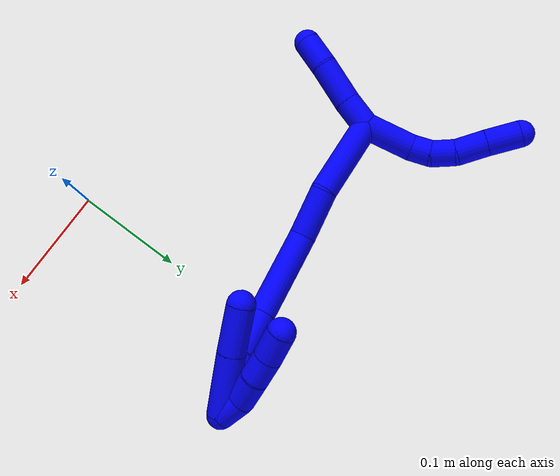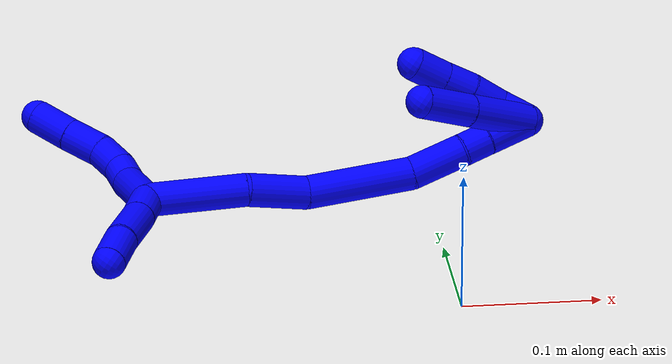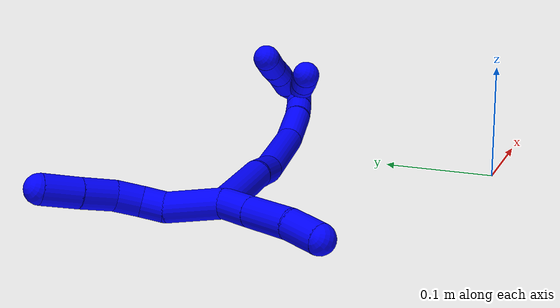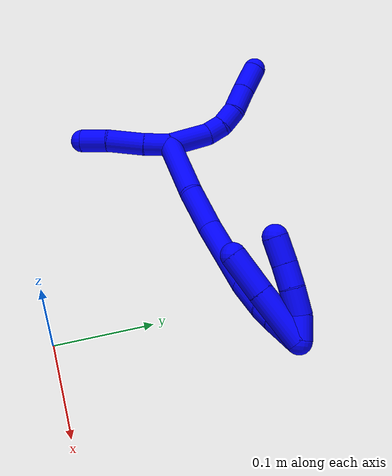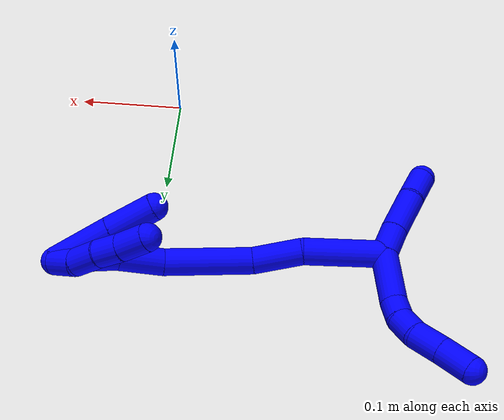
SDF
<sdf version="1.7">
 <world name="default">
  <model name="1">
   <static>0</static>
   <link name="1">
    <collision name="collision-cylinder-e_1_2_8">
     <pose>0.011489 0.018493 0.009743 -1.08589 0.502562 -0.307371</pose>
     <geometry><cylinder><radius>0.0125</radius><length>0.047705</length></cylinder></geometry>
     <surface>
      <friction><ode><mu>1.16</mu><mu2>1.16</mu2><slip1>0</slip1><slip2>0</slip2></ode></friction>
      <contact><ode><kp>1e+06</kp><kd>1</kd><max_vel>0</max_vel><min_depth>0.001</min_depth></ode></contact>
     </surface>
    </collision>
    <visual name="visual-cylinder-e_1_2_8">
     <pose>0.011489 0.018493 0.009743 -1.08589 0.502562 -0.307371</pose>
     <geometry><cylinder><radius>0.0125</radius><length>0.047705</length></cylinder></geometry>
     <material><ambient>0 0 1 1</ambient></material>
    </visual>
    <collision name="collision-cylinder-e_2_8_9">
     <pose>0.028894 0.042202 0.025669 -0.700778 0.631579 -0.237689</pose>
     <geometry><cylinder><radius>0.0125</radius><length>0.020041</length></cylinder></geometry>
     <surface>
      <friction><ode><mu>1.16</mu><mu2>1.16</mu2><slip1>0</slip1><slip2>0</slip2></ode></friction>
      <contact><ode><kp>1e+06</kp><kd>1</kd><max_vel>0</max_vel><min_depth>0.001</min_depth></ode></contact>
     </surface>
    </collision>
    <visual name="visual-cylinder-e_2_8_9">
     <pose>0.028894 0.042202 0.025669 -0.700778 0.631579 -0.237689</pose>
     <geometry><cylinder><radius>0.0125</radius><length>0.020041</length></cylinder></geometry>
     <material><ambient>0 0 1 1</ambient></material>
    </visual>
    <collision name="collision-cylinder-e_3_9_10">
     <pose>0.038753 0.05204 0.041283 -0.455741 0.359004 -0.084108</pose>
     <geometry><cylinder><radius>0.0125</radius><length>0.022442</length></cylinder></geometry>
     <surface>
      <friction><ode><mu>1.16</mu><mu2>1.16</mu2><slip1>0</slip1><slip2>0</slip2></ode></friction>
      <contact><ode><kp>1e+06</kp><kd>1</kd><max_vel>0</max_vel><min_depth>0.001</min_depth></ode></contact>
     </surface>
    </collision>
    <visual name="visual-cylinder-e_3_9_10">
     <pose>0.038753 0.05204 0.041283 -0.455741 0.359004 -0.084108</pose>
     <geometry><cylinder><radius>0.0125</radius><length>0.022442</length></cylinder></geometry>
     <material><ambient>0 0 1 1</ambient></material>
    </visual>
    <collision name="collision-cylinder-e_4_10_11">
     <pose>0.043777 0.062206 0.063885 -0.39836 0.075541 -0.015255</pose>
     <geometry><cylinder><radius>0.0125</radius><length>0.028656</length></cylinder></geometry>
     <surface>
      <friction><ode><mu>1.16</mu><mu2>1.16</mu2><slip1>0</slip1><slip2>0</slip2></ode></friction>
      <contact><ode><kp>1e+06</kp><kd>1</kd><max_vel>0</max_vel><min_depth>0.001</min_depth></ode></contact>
     </surface>
    </collision>
    <visual name="visual-cylinder-e_4_10_11">
     <pose>0.043777 0.062206 0.063885 -0.39836 0.075541 -0.015255</pose>
     <geometry><cylinder><radius>0.0125</radius><length>0.028656</length></cylinder></geometry>
     <material><ambient>0 0 1 1</ambient></material>
    </visual>
    <collision name="collision-cylinder-e_5_11_6">
     <pose>0.046782 0.073852 0.091256 -0.405917 0.123851 -0.025519</pose>
     <geometry><cylinder><radius>0.0125</radius><length>0.031157</length></cylinder></geometry>
     <surface>
      <friction><ode><mu>1.16</mu><mu2>1.16</mu2><slip1>0</slip1><slip2>0</slip2></ode></friction>
      <contact><ode><kp>1e+06</kp><kd>1</kd><max_vel>0</max_vel><min_depth>0.001</min_depth></ode></contact>
     </surface>
    </collision>
    <visual name="visual-cylinder-e_5_11_6">
     <pose>0.046782 0.073852 0.091256 -0.405917 0.123851 -0.025519</pose>
     <geometry><cylinder><radius>0.0125</radius><length>0.031157</length></cylinder></geometry>
     <material><ambient>0 0 1 1</ambient></material>
    </visual>
    <collision name="collision-cylinder-e_1_2_12">
     <pose>-0.012082 -0.00769 -0.001104 1.71337 -0.99935 -1.12414</pose>
     <geometry><cylinder><radius>0.0125</radius><length>0.028729</length></cylinder></geometry>
     <surface>
      <friction><ode><mu>1.16</mu><mu2>1.16</mu2><slip1>0</slip1><slip2>0</slip2></ode></friction>
      <contact><ode><kp>1e+06</kp><kd>1</kd><max_vel>0</max_vel><min_depth>0.001</min_depth></ode></contact>
     </surface>
    </collision>
    <visual name="visual-cylinder-e_1_2_12">
     <pose>-0.012082 -0.00769 -0.001104 1.71337 -0.99935 -1.12414</pose>
     <geometry><cylinder><radius>0.0125</radius><length>0.028729</length></cylinder></geometry>
     <material><ambient>0 0 1 1</ambient></material>
    </visual>
    <collision name="collision-cylinder-e_2_12_13">
     <pose>-0.041639 -0.026576 -0.002082 1.55955 -1.00097 -0.991533</pose>
     <geometry><cylinder><radius>0.0125</radius><length>0.041508</length></cylinder></geometry>
     <surface>
      <friction><ode><mu>1.16</mu><mu2>1.16</mu2><slip1>0</slip1><slip2>0</slip2></ode></friction>
      <contact><ode><kp>1e+06</kp><kd>1</kd><max_vel>0</max_vel><min_depth>0.001</min_depth></ode></contact>
     </surface>
    </collision>
    <visual name="visual-cylinder-e_2_12_13">
     <pose>-0.041639 -0.026576 -0.002082 1.55955 -1.00097 -0.991533</pose>
     <geometry><cylinder><radius>0.0125</radius><length>0.041508</length></cylinder></geometry>
     <material><ambient>0 0 1 1</ambient></material>
    </visual>
    <collision name="collision-cylinder-e_3_13_5">
     <pose>-0.072499 -0.044168 -0.003131 1.75241 -1.11854 -1.28872</pose>
     <geometry><cylinder><radius>0.0125</radius><length>0.029763</length></cylinder></geometry>
     <surface>
      <friction><ode><mu>1.16</mu><mu2>1.16</mu2><slip1>0</slip1><slip2>0</slip2></ode></friction>
      <contact><ode><kp>1e+06</kp><kd>1</kd><max_vel>0</max_vel><min_depth>0.001</min_depth></ode></contact>
     </surface>
    </collision>
    <visual name="visual-cylinder-e_3_13_5">
     <pose>-0.072499 -0.044168 -0.003131 1.75241 -1.11854 -1.28872</pose>
     <geometry><cylinder><radius>0.0125</radius><length>0.029763</length></cylinder></geometry>
     <material><ambient>0 0 1 1</ambient></material>
    </visual>
    <collision name="collision-cylinder-e_1_2_14">
     <pose>0.023293 -0.006802 -0.028027 2.90351 0.679373 2.48888</pose>
     <geometry><cylinder><radius>0.0125</radius><length>0.074144</length></cylinder></geometry>
     <surface>
      <friction><ode><mu>1.16</mu><mu2>1.16</mu2><slip1>0</slip1><slip2>0</slip2></ode></friction>
      <contact><ode><kp>1e+06</kp><kd>1</kd><max_vel>0</max_vel><min_depth>0.001</min_depth></ode></contact>
     </surface>
    </collision>
    <visual name="visual-cylinder-e_1_2_14">
     <pose>0.023293 -0.006802 -0.028027 2.90351 0.679373 2.48888</pose>
     <geometry><cylinder><radius>0.0125</radius><length>0.074144</length></cylinder></geometry>
     <material><ambient>0 0 1 1</ambient></material>
    </visual>
    <collision name="collision-cylinder-e_2_14_15">
     <pose>0.060418 -0.012271 -0.074772 -3.07054 0.63523 -2.92621</pose>
     <geometry><cylinder><radius>0.0125</radius><length>0.046624</length></cylinder></geometry>
     <surface>
      <friction><ode><mu>1.16</mu><mu2>1.16</mu2><slip1>0</slip1><slip2>0</slip2></ode></friction>
      <contact><ode><kp>1e+06</kp><kd>1</kd><max_vel>0</max_vel><min_depth>0.001</min_depth></ode></contact>
     </surface>
    </collision>
    <visual name="visual-cylinder-e_2_14_15">
     <pose>0.060418 -0.012271 -0.074772 -3.07054 0.63523 -2.92621</pose>
     <geometry><cylinder><radius>0.0125</radius><length>0.046624</length></cylinder></geometry>
     <material><ambient>0 0 1 1</ambient></material>
    </visual>
    <collision name="collision-cylinder-e_3_15_16">
     <pose>0.102815 -0.017243 -0.121868 2.92301 0.776624 2.61747</pose>
     <geometry><cylinder><radius>0.0125</radius><length>0.081511</length></cylinder></geometry>
     <surface>
      <friction><ode><mu>1.16</mu><mu2>1.16</mu2><slip1>0</slip1><slip2>0</slip2></ode></friction>
      <contact><ode><kp>1e+06</kp><kd>1</kd><max_vel>0</max_vel><min_depth>0.001</min_depth></ode></contact>
     </surface>
    </collision>
    <visual name="visual-cylinder-e_3_15_16">
     <pose>0.102815 -0.017243 -0.121868 2.92301 0.776624 2.61747</pose>
     <geometry><cylinder><radius>0.0125</radius><length>0.081511</length></cylinder></geometry>
     <material><ambient>0 0 1 1</ambient></material>
    </visual>
    <collision name="collision-cylinder-e_4_16_17">
     <pose>0.147984 -0.03052 -0.161184 2.57401 0.907647 2.06379</pose>
     <geometry><cylinder><radius>0.0125</radius><length>0.042141</length></cylinder></geometry>
     <surface>
      <friction><ode><mu>1.16</mu><mu2>1.16</mu2><slip1>0</slip1><slip2>0</slip2></ode></friction>
      <contact><ode><kp>1e+06</kp><kd>1</kd><max_vel>0</max_vel><min_depth>0.001</min_depth></ode></contact>
     </surface>
    </collision>
    <visual name="visual-cylinder-e_4_16_17">
     <pose>0.147984 -0.03052 -0.161184 2.57401 0.907647 2.06379</pose>
     <geometry><cylinder><radius>0.0125</radius><length>0.042141</length></cylinder></geometry>
     <material><ambient>0 0 1 1</ambient></material>
    </visual>
    <collision name="collision-cylinder-e_5_17_18">
     <pose>0.173132 -0.039573 -0.177175 2.75115 1.00165 2.44827</pose>
     <geometry><cylinder><radius>0.0125</radius><length>0.020285</length></cylinder></geometry>
     <surface>
      <friction><ode><mu>1.16</mu><mu2>1.16</mu2><slip1>0</slip1><slip2>0</slip2></ode></friction>
      <contact><ode><kp>1e+06</kp><kd>1</kd><max_vel>0</max_vel><min_depth>0.001</min_depth></ode></contact>
     </surface>
    </collision>
    <visual name="visual-cylinder-e_5_17_18">
     <pose>0.173132 -0.039573 -0.177175 2.75115 1.00165 2.44827</pose>
     <geometry><cylinder><radius>0.0125</radius><length>0.020285</length></cylinder></geometry>
     <material><ambient>0 0 1 1</ambient></material>
    </visual>
    <collision name="collision-cylinder-e_6_18_1">
     <pose>0.196867 -0.043983 -0.190904 2.8792 1.03686 2.68697</pose>
     <geometry><cylinder><radius>0.0125</radius><length>0.035295</length></cylinder></geometry>
     <surface>
      <friction><ode><mu>1.16</mu><mu2>1.16</mu2><slip1>0</slip1><slip2>0</slip2></ode></friction>
      <contact><ode><kp>1e+06</kp><kd>1</kd><max_vel>0</max_vel><min_depth>0.001</min_depth></ode></contact>
     </surface>
    </collision>
    <visual name="visual-cylinder-e_6_18_1">
     <pose>0.196867 -0.043983 -0.190904 2.8792 1.03686 2.68697</pose>
     <geometry><cylinder><radius>0.0125</radius><length>0.035295</length></cylinder></geometry>
     <material><ambient>0 0 1 1</ambient></material>
    </visual>
    <collision name="collision-cylinder-e_1_1_19">
     <pose>0.195289 -0.056532 -0.179126 0.46338 -0.632842 -0.154189</pose>
     <geometry><cylinder><radius>0.0125</radius><length>0.056706</length></cylinder></geometry>
     <surface>
      <friction><ode><mu>1.16</mu><mu2>1.16</mu2><slip1>0</slip1><slip2>0</slip2></ode></friction>
      <contact><ode><kp>1e+06</kp><kd>1</kd><max_vel>0</max_vel><min_depth>0.001</min_depth></ode></contact>
     </surface>
    </collision>
    <visual name="visual-cylinder-e_1_1_19">
     <pose>0.195289 -0.056532 -0.179126 0.46338 -0.632842 -0.154189</pose>
     <geometry><cylinder><radius>0.0125</radius><length>0.056706</length></cylinder></geometry>
     <material><ambient>0 0 1 1</ambient></material>
    </visual>
    <collision name="collision-cylinder-e_2_19_4">
     <pose>0.165985 -0.074137 -0.142646 0.431806 -0.617599 -0.139702</pose>
     <geometry><cylinder><radius>0.0125</radius><length>0.043294</length></cylinder></geometry>
     <surface>
      <friction><ode><mu>1.16</mu><mu2>1.16</mu2><slip1>0</slip1><slip2>0</slip2></ode></friction>
      <contact><ode><kp>1e+06</kp><kd>1</kd><max_vel>0</max_vel><min_depth>0.001</min_depth></ode></contact>
     </surface>
    </collision>
    <visual name="visual-cylinder-e_2_19_4">
     <pose>0.165985 -0.074137 -0.142646 0.431806 -0.617599 -0.139702</pose>
     <geometry><cylinder><radius>0.0125</radius><length>0.043294</length></cylinder></geometry>
     <material><ambient>0 0 1 1</ambient></material>
    </visual>
    <collision name="collision-cylinder-e_1_1_20">
     <pose>0.210608 -0.0459 -0.18768 -0.034686 -0.12123 0.002105</pose>
     <geometry><cylinder><radius>0.0125</radius><length>0.023985</length></cylinder></geometry>
     <surface>
      <friction><ode><mu>1.16</mu><mu2>1.16</mu2><slip1>0</slip1><slip2>0</slip2></ode></friction>
      <contact><ode><kp>1e+06</kp><kd>1</kd><max_vel>0</max_vel><min_depth>0.001</min_depth></ode></contact>
     </surface>
    </collision>
    <visual name="visual-cylinder-e_1_1_20">
     <pose>0.210608 -0.0459 -0.18768 -0.034686 -0.12123 0.002105</pose>
     <geometry><cylinder><radius>0.0125</radius><length>0.023985</length></cylinder></geometry>
     <material><ambient>0 0 1 1</ambient></material>
    </visual>
    <collision name="collision-cylinder-e_2_20_21">
     <pose>0.205982 -0.049098 -0.163543 0.286898 -0.243869 -0.035397</pose>
     <geometry><cylinder><radius>0.0125</radius><length>0.026301</length></cylinder></geometry>
     <surface>
      <friction><ode><mu>1.16</mu><mu2>1.16</mu2><slip1>0</slip1><slip2>0</slip2></ode></friction>
      <contact><ode><kp>1e+06</kp><kd>1</kd><max_vel>0</max_vel><min_depth>0.001</min_depth></ode></contact>
     </surface>
    </collision>
    <visual name="visual-cylinder-e_2_20_21">
     <pose>0.205982 -0.049098 -0.163543 0.286898 -0.243869 -0.035397</pose>
     <geometry><cylinder><radius>0.0125</radius><length>0.026301</length></cylinder></geometry>
     <material><ambient>0 0 1 1</ambient></material>
    </visual>
    <collision name="collision-cylinder-e_3_21_22">
     <pose>0.198945 -0.055 -0.14056 0.210056 -0.338104 -0.035981</pose>
     <geometry><cylinder><radius>0.0125</radius><length>0.023288</length></cylinder></geometry>
     <surface>
      <friction><ode><mu>1.16</mu><mu2>1.16</mu2><slip1>0</slip1><slip2>0</slip2></ode></friction>
      <contact><ode><kp>1e+06</kp><kd>1</kd><max_vel>0</max_vel><min_depth>0.001</min_depth></ode></contact>
     </surface>
    </collision>
    <visual name="visual-cylinder-e_3_21_22">
     <pose>0.198945 -0.055 -0.14056 0.210056 -0.338104 -0.035981</pose>
     <geometry><cylinder><radius>0.0125</radius><length>0.023288</length></cylinder></geometry>
     <material><ambient>0 0 1 1</ambient></material>
    </visual>
    <collision name="collision-cylinder-e_4_22_3">
     <pose>0.190751 -0.060871 -0.117858 0.290886 -0.33399 -0.049372</pose>
     <geometry><cylinder><radius>0.0125</radius><length>0.026426</length></cylinder></geometry>
     <surface>
      <friction><ode><mu>1.16</mu><mu2>1.16</mu2><slip1>0</slip1><slip2>0</slip2></ode></friction>
      <contact><ode><kp>1e+06</kp><kd>1</kd><max_vel>0</max_vel><min_depth>0.001</min_depth></ode></contact>
     </surface>
    </collision>
    <visual name="visual-cylinder-e_4_22_3">
     <pose>0.190751 -0.060871 -0.117858 0.290886 -0.33399 -0.049372</pose>
     <geometry><cylinder><radius>0.0125</radius><length>0.026426</length></cylinder></geometry>
     <material><ambient>0 0 1 1</ambient></material>
    </visual>
    <collision name="collision-sphere-3">
     <pose>0.186419 -0.064451 -0.1059 0 -0 0</pose>
     <geometry><sphere><radius>0.0125</radius></sphere></geometry>
     <surface>
      <friction><ode><mu>1.16</mu><mu2>1.16</mu2><slip1>0</slip1><slip2>0</slip2></ode></friction>
      <contact><ode><kp>1e+06</kp><kd>1</kd><max_vel>0</max_vel><min_depth>0.001</min_depth></ode></contact>
     </surface>
    </collision>
    <visual name="visual-sphere-3">
     <pose>0.186419 -0.064451 -0.1059 0 -0 0</pose>
     <geometry><sphere><radius>0.0125</radius></sphere></geometry>
     <material><ambient>0 0 1 1</ambient></material>
    </visual>
    <collision name="collision-sphere-22">
     <pose>0.195082 -0.057291 -0.129817 0 -0 0</pose>
     <geometry><sphere><radius>0.0125</radius></sphere></geometry>
     <surface>
      <friction><ode><mu>1.16</mu><mu2>1.16</mu2><slip1>0</slip1><slip2>0</slip2></ode></friction>
      <contact><ode><kp>1e+06</kp><kd>1</kd><max_vel>0</max_vel><min_depth>0.001</min_depth></ode></contact>
     </surface>
    </collision>
    <visual name="visual-sphere-22">
     <pose>0.195082 -0.057291 -0.129817 0 -0 0</pose>
     <geometry><sphere><radius>0.0125</radius></sphere></geometry>
     <material><ambient>0 0 1 1</ambient></material>
    </visual>
    <collision name="collision-sphere-21">
     <pose>0.202807 -0.05271 -0.151304 0 -0 0</pose>
     <geometry><sphere><radius>0.0125</radius></sphere></geometry>
     <surface>
      <friction><ode><mu>1.16</mu><mu2>1.16</mu2><slip1>0</slip1><slip2>0</slip2></ode></friction>
      <contact><ode><kp>1e+06</kp><kd>1</kd><max_vel>0</max_vel><min_depth>0.001</min_depth></ode></contact>
     </surface>
    </collision>
    <visual name="visual-sphere-21">
     <pose>0.202807 -0.05271 -0.151304 0 -0 0</pose>
     <geometry><sphere><radius>0.0125</radius></sphere></geometry>
     <material><ambient>0 0 1 1</ambient></material>
    </visual>
    <collision name="collision-sphere-20">
     <pose>0.209158 -0.045487 -0.175783 0 -0 0</pose>
     <geometry><sphere><radius>0.0125</radius></sphere></geometry>
     <surface>
      <friction><ode><mu>1.16</mu><mu2>1.16</mu2><slip1>0</slip1><slip2>0</slip2></ode></friction>
      <contact><ode><kp>1e+06</kp><kd>1</kd><max_vel>0</max_vel><min_depth>0.001</min_depth></ode></contact>
     </surface>
    </collision>
    <visual name="visual-sphere-20">
     <pose>0.209158 -0.045487 -0.175783 0 -0 0</pose>
     <geometry><sphere><radius>0.0125</radius></sphere></geometry>
     <material><ambient>0 0 1 1</ambient></material>
    </visual>
    <collision name="collision-sphere-4">
     <pose>0.153449 -0.081523 -0.126618 0 -0 0</pose>
     <geometry><sphere><radius>0.0125</radius></sphere></geometry>
     <surface>
      <friction><ode><mu>1.16</mu><mu2>1.16</mu2><slip1>0</slip1><slip2>0</slip2></ode></friction>
      <contact><ode><kp>1e+06</kp><kd>1</kd><max_vel>0</max_vel><min_depth>0.001</min_depth></ode></contact>
     </surface>
    </collision>
    <visual name="visual-sphere-4">
     <pose>0.153449 -0.081523 -0.126618 0 -0 0</pose>
     <geometry><sphere><radius>0.0125</radius></sphere></geometry>
     <material><ambient>0 0 1 1</ambient></material>
    </visual>
    <collision name="collision-sphere-6">
     <pose>0.048707 0.079956 0.105459 0 -0 0</pose>
     <geometry><sphere><radius>0.0125</radius></sphere></geometry>
     <surface>
      <friction><ode><mu>1.16</mu><mu2>1.16</mu2><slip1>0</slip1><slip2>0</slip2></ode></friction>
      <contact><ode><kp>1e+06</kp><kd>1</kd><max_vel>0</max_vel><min_depth>0.001</min_depth></ode></contact>
     </surface>
    </collision>
    <visual name="visual-sphere-6">
     <pose>0.048707 0.079956 0.105459 0 -0 0</pose>
     <geometry><sphere><radius>0.0125</radius></sphere></geometry>
     <material><ambient>0 0 1 1</ambient></material>
    </visual>
    <collision name="collision-sphere-11">
     <pose>0.044858 0.067748 0.077054 0 -0 0</pose>
     <geometry><sphere><radius>0.0125</radius></sphere></geometry>
     <surface>
      <friction><ode><mu>1.16</mu><mu2>1.16</mu2><slip1>0</slip1><slip2>0</slip2></ode></friction>
      <contact><ode><kp>1e+06</kp><kd>1</kd><max_vel>0</max_vel><min_depth>0.001</min_depth></ode></contact>
     </surface>
    </collision>
    <visual name="visual-sphere-11">
     <pose>0.044858 0.067748 0.077054 0 -0 0</pose>
     <geometry><sphere><radius>0.0125</radius></sphere></geometry>
     <material><ambient>0 0 1 1</ambient></material>
    </visual>
    <collision name="collision-sphere-10">
     <pose>0.042695 0.056664 0.050717 0 -0 0</pose>
     <geometry><sphere><radius>0.0125</radius></sphere></geometry>
     <surface>
      <friction><ode><mu>1.16</mu><mu2>1.16</mu2><slip1>0</slip1><slip2>0</slip2></ode></friction>
      <contact><ode><kp>1e+06</kp><kd>1</kd><max_vel>0</max_vel><min_depth>0.001</min_depth></ode></contact>
     </surface>
    </collision>
    <visual name="visual-sphere-10">
     <pose>0.042695 0.056664 0.050717 0 -0 0</pose>
     <geometry><sphere><radius>0.0125</radius></sphere></geometry>
     <material><ambient>0 0 1 1</ambient></material>
    </visual>
    <collision name="collision-sphere-9">
     <pose>0.034811 0.047416 0.03185 0 -0 0</pose>
     <geometry><sphere><radius>0.0125</radius></sphere></geometry>
     <surface>
      <friction><ode><mu>1.16</mu><mu2>1.16</mu2><slip1>0</slip1><slip2>0</slip2></ode></friction>
      <contact><ode><kp>1e+06</kp><kd>1</kd><max_vel>0</max_vel><min_depth>0.001</min_depth></ode></contact>
     </surface>
    </collision>
    <visual name="visual-sphere-9">
     <pose>0.034811 0.047416 0.03185 0 -0 0</pose>
     <geometry><sphere><radius>0.0125</radius></sphere></geometry>
     <material><ambient>0 0 1 1</ambient></material>
    </visual>
    <collision name="collision-sphere-2">
     <geometry><sphere><radius>0.0125</radius></sphere></geometry>
     <surface>
      <friction><ode><mu>1.16</mu><mu2>1.16</mu2><slip1>0</slip1><slip2>0</slip2></ode></friction>
      <contact><ode><kp>1e+06</kp><kd>1</kd><max_vel>0</max_vel><min_depth>0.001</min_depth></ode></contact>
     </surface>
    </collision>
    <visual name="visual-sphere-2">
     <geometry><sphere><radius>0.0125</radius></sphere></geometry>
     <material><ambient>0 0 1 1</ambient></material>
    </visual>
    <collision name="collision-sphere-19">
     <pose>0.17852 -0.066751 -0.158674 0 -0 0</pose>
     <geometry><sphere><radius>0.0125</radius></sphere></geometry>
     <surface>
      <friction><ode><mu>1.16</mu><mu2>1.16</mu2><slip1>0</slip1><slip2>0</slip2></ode></friction>
      <contact><ode><kp>1e+06</kp><kd>1</kd><max_vel>0</max_vel><min_depth>0.001</min_depth></ode></contact>
     </surface>
    </collision>
    <visual name="visual-sphere-19">
     <pose>0.17852 -0.066751 -0.158674 0 -0 0</pose>
     <geometry><sphere><radius>0.0125</radius></sphere></geometry>
     <material><ambient>0 0 1 1</ambient></material>
    </visual>
    <collision name="collision-sphere-8">
     <pose>0.022978 0.036987 0.019487 0 -0 0</pose>
     <geometry><sphere><radius>0.0125</radius></sphere></geometry>
     <surface>
      <friction><ode><mu>1.16</mu><mu2>1.16</mu2><slip1>0</slip1><slip2>0</slip2></ode></friction>
      <contact><ode><kp>1e+06</kp><kd>1</kd><max_vel>0</max_vel><min_depth>0.001</min_depth></ode></contact>
     </surface>
    </collision>
    <visual name="visual-sphere-8">
     <pose>0.022978 0.036987 0.019487 0 -0 0</pose>
     <geometry><sphere><radius>0.0125</radius></sphere></geometry>
     <material><ambient>0 0 1 1</ambient></material>
    </visual>
    <collision name="collision-sphere-12">
     <pose>-0.024164 -0.01538 -0.002208 0 -0 0</pose>
     <geometry><sphere><radius>0.0125</radius></sphere></geometry>
     <surface>
      <friction><ode><mu>1.16</mu><mu2>1.16</mu2><slip1>0</slip1><slip2>0</slip2></ode></friction>
      <contact><ode><kp>1e+06</kp><kd>1</kd><max_vel>0</max_vel><min_depth>0.001</min_depth></ode></contact>
     </surface>
    </collision>
    <visual name="visual-sphere-12">
     <pose>-0.024164 -0.01538 -0.002208 0 -0 0</pose>
     <geometry><sphere><radius>0.0125</radius></sphere></geometry>
     <material><ambient>0 0 1 1</ambient></material>
    </visual>
    <collision name="collision-sphere-13">
     <pose>-0.059114 -0.037772 -0.001956 0 -0 0</pose>
     <geometry><sphere><radius>0.0125</radius></sphere></geometry>
     <surface>
      <friction><ode><mu>1.16</mu><mu2>1.16</mu2><slip1>0</slip1><slip2>0</slip2></ode></friction>
      <contact><ode><kp>1e+06</kp><kd>1</kd><max_vel>0</max_vel><min_depth>0.001</min_depth></ode></contact>
     </surface>
    </collision>
    <visual name="visual-sphere-13">
     <pose>-0.059114 -0.037772 -0.001956 0 -0 0</pose>
     <geometry><sphere><radius>0.0125</radius></sphere></geometry>
     <material><ambient>0 0 1 1</ambient></material>
    </visual>
    <collision name="collision-sphere-5">
     <pose>-0.085885 -0.050564 -0.004305 0 -0 0</pose>
     <geometry><sphere><radius>0.0125</radius></sphere></geometry>
     <surface>
      <friction><ode><mu>1.16</mu><mu2>1.16</mu2><slip1>0</slip1><slip2>0</slip2></ode></friction>
      <contact><ode><kp>1e+06</kp><kd>1</kd><max_vel>0</max_vel><min_depth>0.001</min_depth></ode></contact>
     </surface>
    </collision>
    <visual name="visual-sphere-5">
     <pose>-0.085885 -0.050564 -0.004305 0 -0 0</pose>
     <geometry><sphere><radius>0.0125</radius></sphere></geometry>
     <material><ambient>0 0 1 1</ambient></material>
    </visual>
    <collision name="collision-sphere-14">
     <pose>0.046585 -0.013604 -0.056055 0 -0 0</pose>
     <geometry><sphere><radius>0.0125</radius></sphere></geometry>
     <surface>
      <friction><ode><mu>1.16</mu><mu2>1.16</mu2><slip1>0</slip1><slip2>0</slip2></ode></friction>
      <contact><ode><kp>1e+06</kp><kd>1</kd><max_vel>0</max_vel><min_depth>0.001</min_depth></ode></contact>
     </surface>
    </collision>
    <visual name="visual-sphere-14">
     <pose>0.046585 -0.013604 -0.056055 0 -0 0</pose>
     <geometry><sphere><radius>0.0125</radius></sphere></geometry>
     <material><ambient>0 0 1 1</ambient></material>
    </visual>
    <collision name="collision-sphere-15">
     <pose>0.07425 -0.010939 -0.09349 0 -0 0</pose>
     <geometry><sphere><radius>0.0125</radius></sphere></geometry>
     <surface>
      <friction><ode><mu>1.16</mu><mu2>1.16</mu2><slip1>0</slip1><slip2>0</slip2></ode></friction>
      <contact><ode><kp>1e+06</kp><kd>1</kd><max_vel>0</max_vel><min_depth>0.001</min_depth></ode></contact>
     </surface>
    </collision>
    <visual name="visual-sphere-15">
     <pose>0.07425 -0.010939 -0.09349 0 -0 0</pose>
     <geometry><sphere><radius>0.0125</radius></sphere></geometry>
     <material><ambient>0 0 1 1</ambient></material>
    </visual>
    <collision name="collision-sphere-16">
     <pose>0.131379 -0.023547 -0.150246 0 -0 0</pose>
     <geometry><sphere><radius>0.0125</radius></sphere></geometry>
     <surface>
      <friction><ode><mu>1.16</mu><mu2>1.16</mu2><slip1>0</slip1><slip2>0</slip2></ode></friction>
      <contact><ode><kp>1e+06</kp><kd>1</kd><max_vel>0</max_vel><min_depth>0.001</min_depth></ode></contact>
     </surface>
    </collision>
    <visual name="visual-sphere-16">
     <pose>0.131379 -0.023547 -0.150246 0 -0 0</pose>
     <geometry><sphere><radius>0.0125</radius></sphere></geometry>
     <material><ambient>0 0 1 1</ambient></material>
    </visual>
    <collision name="collision-sphere-17">
     <pose>0.164588 -0.037493 -0.172121 0 -0 0</pose>
     <geometry><sphere><radius>0.0125</radius></sphere></geometry>
     <surface>
      <friction><ode><mu>1.16</mu><mu2>1.16</mu2><slip1>0</slip1><slip2>0</slip2></ode></friction>
      <contact><ode><kp>1e+06</kp><kd>1</kd><max_vel>0</max_vel><min_depth>0.001</min_depth></ode></contact>
     </surface>
    </collision>
    <visual name="visual-sphere-17">
     <pose>0.164588 -0.037493 -0.172121 0 -0 0</pose>
     <geometry><sphere><radius>0.0125</radius></sphere></geometry>
     <material><ambient>0 0 1 1</ambient></material>
    </visual>
    <collision name="collision-sphere-18">
     <pose>0.181675 -0.041654 -0.18223 0 -0 0</pose>
     <geometry><sphere><radius>0.0125</radius></sphere></geometry>
     <surface>
      <friction><ode><mu>1.16</mu><mu2>1.16</mu2><slip1>0</slip1><slip2>0</slip2></ode></friction>
      <contact><ode><kp>1e+06</kp><kd>1</kd><max_vel>0</max_vel><min_depth>0.001</min_depth></ode></contact>
     </surface>
    </collision>
    <visual name="visual-sphere-18">
     <pose>0.181675 -0.041654 -0.18223 0 -0 0</pose>
     <geometry><sphere><radius>0.0125</radius></sphere></geometry>
     <material><ambient>0 0 1 1</ambient></material>
    </visual>
    <collision name="collision-sphere-1">
     <pose>0.212058 -0.046313 -0.199578 0 -0 0</pose>
     <geometry><sphere><radius>0.0125</radius></sphere></geometry>
     <surface>
      <friction><ode><mu>1.16</mu><mu2>1.16</mu2><slip1>0</slip1><slip2>0</slip2></ode></friction>
      <contact><ode><kp>1e+06</kp><kd>1</kd><max_vel>0</max_vel><min_depth>0.001</min_depth></ode></contact>
     </surface>
    </collision>
    <visual name="visual-sphere-1">
     <pose>0.212058 -0.046313 -0.199578 0 -0 0</pose>
     <geometry><sphere><radius>0.0125</radius></sphere></geometry>
     <material><ambient>0 0 1 1</ambient></material>
    </visual>
    <inertial>
     <pose>0.091333 -0.017973 -0.077037 0 -0 0</pose>
     <mass>0.75</mass>
     <inertia>
      <ixx>1.8e-05</ixx>
      <ixy>0</ixy>
      <ixz>0</ixz>
      <iyy>0.000177</iyy>
      <iyz>0</iyz>
      <izz>-2.5e-05</izz>
     </inertia>
    </inertial>
   </link>
   <pose>-0.210842 0.168921 0.017528 -0.950107 -0.480076 0.878272</pose>
  </model>
 </world>
</sdf>
